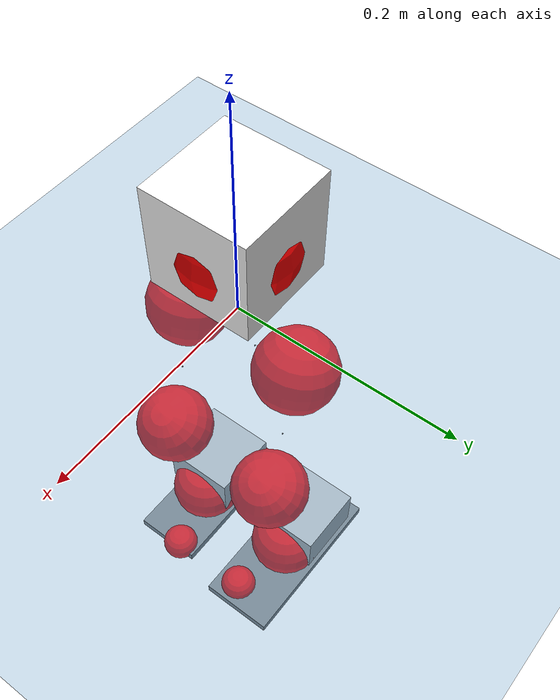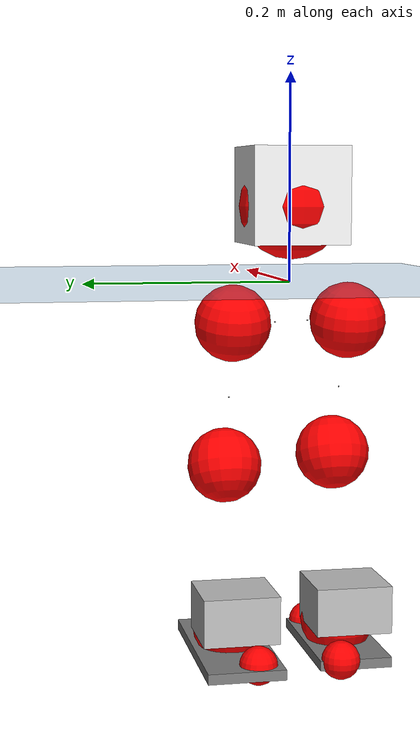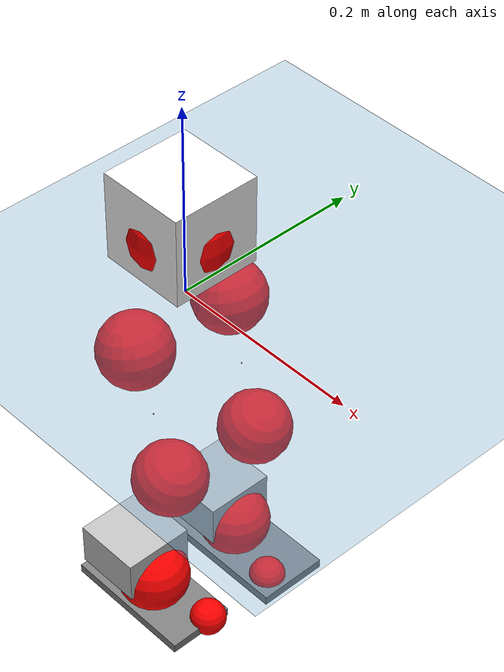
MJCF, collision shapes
<mujoco model="pi_12dof_release_v1">
  <compiler angle="radian" assetdir="assets" balanceinertia="true" inertiafromgeom="false"/>

  <option timestep="0.005" density="1.2" viscosity="2e-05"/>

  <size nkey="1"/>

  <visual>
    <quality shadowsize="8192"/>
    <map shadowclip="0.5"/>
  </visual>

  <default>
    <default class="/">
      <joint armature="0.01" damping="0.01" frictionloss="0.01"/>
      <geom contype="0" conaffinity="0" group="1" solref="-1000 -80"/>
      <site size="0.01 0.005 0.005" group="5"/>
      <general forcelimited="true" biastype="affine" gainprm="20" biasprm="0 -20 -0.5"/>
      <default class="foot">
        <geom size="0.0845 0.036 0.005" type="box" condim="6" group="4" priority="1" friction="0.9 0.2 0.2" solimp="0.015 1 0.005"/>
      </default>
      <default class="reward_collision_sphere">
        <geom group="5" rgba="1 0 0 1"/>
      </default>
    </default>
  </default>

  <asset>
    <texture type="skybox" colorspace="auto" name="//unnamed_texture_0" builtin="gradient" rgb1="0.95 0.95 0.95" rgb2="0.95 0.95 0.95" width="100" height="600"/>
    <texture type="2d" colorspace="auto" name="texplane" builtin="checker" rgb1="0.345 0.575 0.748" rgb2="0.345 0.575 0.748" markrgb="1 1 1" width="512" height="512"/>
    <material name="MatPlane" class="/" texture="texplane" texuniform="true" texrepeat="2 2" specular="0.9"/>
    <mesh name="baselink_1" class="/" file="baselink_1.STL"/>
    <mesh name="r_hip_pitch_link" class="/" file="r_hip_pitch_link.STL"/>
    <mesh name="r_hip_roll_link" class="/" file="r_hip_roll_link.STL"/>
    <mesh name="r_thigh_link" class="/" file="r_thigh_link.STL"/>
    <mesh name="r_calf_link" class="/" file="r_calf_link.STL"/>
    <mesh name="r_ankle_pitch_link" class="/" file="r_ankle_pitch_link.STL"/>
    <mesh name="r_ankle_roll_link" class="/" file="r_ankle_roll_link.STL"/>
    <mesh name="l_hip_pitch_link" class="/" file="l_hip_pitch_link.STL"/>
    <mesh name="l_hip_roll_link" class="/" file="l_hip_roll_link.STL"/>
    <mesh name="l_thigh_link" class="/" file="l_thigh_link.STL"/>
    <mesh name="l_calf_link" class="/" file="l_calf_link.STL"/>
    <mesh name="l_ankle_pitch_link" class="/" file="l_ankle_pitch_link.STL"/>
    <mesh name="l_ankle_roll_link" class="/" file="l_ankle_roll_link.STL"/>
  </asset>

  <worldbody>
    <geom name="floor" class="/" size="100 100 0.125" type="plane" group="0" material="MatPlane"/>
    <light name="toplight_shadow" class="/" pos="0 0 5" dir="0.0990148 0.0990148 -0.990148" type="directional" ambient="0.04 0.04 0.04" diffuse="0.55 0.55 0.55" specular="0.12 0.12 0.12"/>
    <light name="toplight_fill" class="/" pos="0 0 5" dir="0.0990148 0.0990148 -0.990148" type="directional" castshadow="false" ambient="0.04 0.04 0.04" diffuse="0.3 0.3 0.3" specular="0.08 0.08 0.08"/>
    <body name="trunk" pos="-0.00254588 -0.00103552 -0.00145423" quat="0.999999 -8.22404e-05 -0.00106396 0.000304707">
      <inertial pos="0.000669613 0.000741208 0.0420512" quat="0.696979 0.00104322 -0.00112878 0.71709" mass="1.70905" diaginertia="0.00950808 0.00186029 0.00561084"/>
      <joint name="//unnamed_joint_0" type="free"/>
      <geom name="//unnamed_geom_1" class="/" type="mesh" density="0" rgba="1 1 1 1" mesh="baselink_1"/>
      <geom name="//unnamed_geom_2" class="/" size="0.0462856 0.0462856 0.0462856" pos="0 0 0.0846198" type="box" rgba="1 1 1 1"/>
      <geom name="//unnamed_geom_3" class="reward_collision_sphere" size="0.0509141" pos="0 0 0.0740423"/>
      <site name="imu" class="/" pos="0.00892151 -0.0109442 -0.00121861" size="0.00925711"/>
      <camera name="track" class="/" pos="0 -1.45839 0" quat="0.707107 0.707107 0 0" mode="trackcom"/>
      <camera name="ego_camera" class="/" pos="0.0742642 0 0.190395" quat="-0.5 -0.5 0.5 0.5"/>
      <body name="r_hip_pitch_link" pos="-9.40109e-05 -0.016303 -0.0360455" quat="0.992229 0.000328996 -0.124422 -0.00107343">
        <inertial pos="-0.000683636 -0.0407626 0.000551396" quat="-0.0207583 0.707134 -0.0155296 0.706605" mass="0.303371" diaginertia="0.000106543 2.08379e-05 0.000115791"/>
        <joint name="r_hip_pitch_joint" class="/" pos="0 0 0" axis="-0.00221448 -0.999996 0.00200804" range="-1.73594 1.23586" armature="0.00848475" damping="0.00438253" frictionloss="0.00904176"/>
        <geom name="//unnamed_geom_4" class="/" type="mesh" density="0" rgba="0.75294 0.75294 0.75294 1" mesh="r_hip_pitch_link"/>
        <geom name="//unnamed_geom_5" class="/" size="0.000462856 0.000462856 0.000462856" type="box" rgba="0.75294 0.75294 0.75294 1"/>
        <body name="r_hip_roll_link" pos="-0.00076221 -0.0400717 -0.000109322" quat="1 0.000252058 0.00027308 -9.87263e-05">
          <inertial pos="-0.00128177 -0.00278632 -0.0667693" quat="0.707004 -0.078413 -0.081281 0.698134" mass="0.312563" diaginertia="0.000314099 5.61467e-05 0.00016799"/>
          <joint name="r_hip_roll_joint" class="/" pos="0 0 0" axis="-0.999921 0.0117409 0.00444931" range="-0.13901 0.552351" armature="0.00928785" damping="0.0102812" frictionloss="0.00928888"/>
          <geom name="//unnamed_geom_6" class="/" type="mesh" density="0" rgba="0.75294 0.75294 0.75294 1" mesh="r_hip_roll_link"/>
          <geom name="//unnamed_geom_7" class="/" size="0.000462856 0.000462856 0.000462856" type="box" rgba="0.75294 0.75294 0.75294 1"/>
          <geom name="//unnamed_geom_8" class="reward_collision_sphere" size="0.0370284"/>
          <body name="r_thigh_link" pos="0.00170084 0.00277306 -0.0705773" quat="1 4.30883e-05 0.000128417 -3.78226e-05">
            <inertial pos="0.000839449 -0.00124552 -0.0478563" quat="0.736704 0.676214 -0.000488756 0.00128784" mass="0.0930552" diaginertia="0.000123456 1.98618e-05 7.6928e-05"/>
            <joint name="r_thigh_joint" class="/" pos="0 0 0" axis="-0.00222883 -0.0135689 -0.999905" stiffness="0.00909484" range="-0.309755 0.604206" armature="0.00872633" damping="0" frictionloss="0.00825682"/>
            <geom name="//unnamed_geom_9" class="/" type="mesh" density="0" rgba="0.75294 0.75294 0.75294 1" mesh="r_thigh_link"/>
            <geom name="//unnamed_geom_10" class="/" size="0.000462856 0.000462856 0.000462856" type="box" rgba="0.75294 0.75294 0.75294 1"/>
            <body name="r_calf_link" pos="0.00208782 0.000836851 -0.0719372" quat="0.947639 -3.62785e-05 0.319344 -4.34346e-05">
              <inertial pos="-5.16041e-05 -0.00302181 -0.0737162" quat="0.999932 0.00829791 -0.00679302 0.00458467" mass="0.669082" diaginertia="0.00339185 0.000751537 0.000235417"/>
              <joint name="r_calf_joint" class="/" pos="0 0 0" axis="-0.00425682 -0.99998 -0.00465492" range="-1.59657 0.642966" armature="0.00789935" damping="0.00408906" frictionloss="0.00900879"/>
              <geom name="//unnamed_geom_11" class="/" type="mesh" density="0" rgba="0.75294 0.75294 0.75294 1" mesh="r_calf_link"/>
              <geom name="//unnamed_geom_12" class="/" size="0.000462856 0.000462856 0.000462856" type="box" rgba="0.75294 0.75294 0.75294 1"/>
              <geom name="//unnamed_geom_13" class="reward_collision_sphere" size="0.0370284"/>
              <body name="r_ankle_pitch_link" pos="0.00213245 0.000545205 -0.150423" quat="0.980067 -3.32772e-06 -0.198669 1.24666e-07">
                <inertial pos="0.00439612 0.00254021 -0.0027204" quat="-0.00560287 0.703952 0.00314486 0.710219" mass="0.143706" diaginertia="0.000296385 4.72016e-05 0.000163673"/>
                <joint name="r_ankle_pitch_joint" class="/" pos="0 0 0" axis="-0.000287711 -1 0.000668422" range="-1.30558 0.548095" armature="0.0092555" damping="0.00628434" frictionloss="0.0105411"/>
                <geom name="//unnamed_geom_14" class="/" type="mesh" density="0" rgba="0.75294 0.75294 0.75294 1" mesh="r_ankle_pitch_link"/>
                <geom name="//unnamed_geom_15" class="/" size="0.0361027 0.0370284 0.0231428" type="box" rgba="0.75294 0.75294 0.75294 1"/>
                <body name="r_ankle_roll_link" pos="0.0748609 0.00118397 -0.00161095" quat="1 9.53035e-05 4.38124e-05 3.98862e-06">
                  <inertial pos="-0.0243094 0.00037934 -0.0132629" quat="0.563313 0.425223 0.438878 0.556102" mass="0.387268" diaginertia="0.00105874 0.000212975 0.000352955"/>
                  <joint name="r_ankle_roll_joint" class="/" pos="0 0 0" axis="-0.999901 0.0121265 -0.00720323" range="-0.103794 0.0954504" armature="0.0080234" damping="0.0219746" frictionloss="0.00843806"/>
                  <geom name="//unnamed_geom_16" class="/" type="mesh" density="0" rgba="0.75294 0.75294 0.75294 1" mesh="r_ankle_roll_link"/>
                  <geom name="//unnamed_geom_17" class="/" type="mesh" rgba="0.75294 0.75294 0.75294 1" mesh="r_ankle_roll_link"/>
                  <geom name="right_foot" class="foot" size="0.0714461 0.0351128 0.00478694" pos="-0.0504996 0 -0.0465409"/>
                  <geom name="//unnamed_geom_19" class="reward_collision_sphere" size="0.0370284" pos="-0.0495094 0 -0.021155"/>
                  <geom name="//unnamed_geom_20" class="reward_collision_sphere" size="0.0185142" pos="0.0148528 0.0145839 -0.0423099"/>
                  <geom name="//unnamed_geom_21" class="reward_collision_sphere" size="0.0185142" pos="-0.118823 0.0145839 -0.0423099"/>
                  <site name="right_foot" class="foot" pos="-0.0504996 0 -0.0465409" size="0.00925711"/>
                </body>
              </body>
            </body>
          </body>
        </body>
      </body>
      <body name="l_hip_pitch_link" pos="0.000322931 0.0157821 -0.0371861" quat="0.992147 -0.000139068 -0.12508 -9.54056e-05">
        <inertial pos="0.000558556 0.0401175 -0.00289871" quat="-0.0348777 0.704118 0.0272234 0.708703" mass="0.323248" diaginertia="0.000127859 2.12633e-05 0.000134154"/>
        <joint name="l_hip_pitch_joint" class="/" pos="0 0 0" axis="0.00540591 0.999981 -0.00300013" range="-1.19403 1.74327" armature="0.0105601" damping="0.00637985" frictionloss="0.00974858"/>
        <geom name="//unnamed_geom_22" class="/" type="mesh" density="0" rgba="0.75294 0.75294 0.75294 1" mesh="l_hip_pitch_link"/>
        <geom name="//unnamed_geom_23" class="/" size="0.000462856 0.000462856 0.000462856" type="box" rgba="0.75294 0.75294 0.75294 1"/>
        <body name="l_hip_roll_link" pos="-0.000534387 0.0415766 -0.00034154" quat="1 7.86379e-07 -5.49511e-06 -8.46065e-06">
          <inertial pos="-0.00426264 -0.00137822 -0.0665851" quat="0.694014 -0.0838311 -0.0867827 0.709779" mass="0.315222" diaginertia="0.000309707 5.811e-05 0.000165937"/>
          <joint name="l_hip_roll_joint" class="/" pos="0 0 0" axis="-0.999995 0.000629126 0.00306359" range="-0.552033 0.171405" armature="0.00856554" damping="0" frictionloss="0.0092304"/>
          <geom name="//unnamed_geom_24" class="/" type="mesh" density="0" rgba="0.75294 0.75294 0.75294 1" mesh="l_hip_roll_link"/>
          <geom name="//unnamed_geom_25" class="/" size="0.000462856 0.000462856 0.000462856" type="box" rgba="0.75294 0.75294 0.75294 1"/>
          <geom name="//unnamed_geom_26" class="reward_collision_sphere" size="0.0370284"/>
          <body name="l_thigh_link" pos="-0.0024343 0.000526138 -0.0759403" quat="1 -2.5362e-05 -7.59063e-06 4.55396e-06">
            <inertial pos="0.00207868 -0.00358977 -0.0478638" quat="0.684259 0.72921 0.00579406 0.00304929" mass="0.0863169" diaginertia="0.000119262 1.9633e-05 7.64603e-05"/>
            <joint name="l_thigh_joint" class="/" pos="0 0 0" axis="-4.23094e-05 -0.00170318 -0.999999" range="-0.59624 0.265948" armature="0.00912347" damping="0.000520683" frictionloss="0.0096914"/>
            <geom name="//unnamed_geom_27" class="/" type="mesh" density="0" rgba="0.75294 0.75294 0.75294 1" mesh="l_thigh_link"/>
            <geom name="//unnamed_geom_28" class="/" size="0.000462856 0.000462856 0.000462856" type="box" rgba="0.75294 0.75294 0.75294 1"/>
            <body name="l_calf_link" pos="0.000407631 0.000796835 -0.073095" quat="0.94765 -1.98084e-05 0.319312 4.89404e-06">
              <inertial pos="0.000491891 0.004912 -0.0767568" quat="0.999984 0.003089 -0.00013384 0.00478762" mass="0.633508" diaginertia="0.00329537 0.000708965 0.000224826"/>
              <joint name="l_calf_joint" class="/" pos="0 0 0" axis="-0.00336277 0.999992 0.00220324" range="-0.603492 1.7069" armature="0.00926572" damping="0.00948806" frictionloss="0.0092729"/>
              <geom name="//unnamed_geom_29" class="/" type="mesh" density="0" rgba="0.75294 0.75294 0.75294 1" mesh="l_calf_link"/>
              <geom name="//unnamed_geom_30" class="/" size="0.000462856 0.000462856 0.000462856" type="box" rgba="0.75294 0.75294 0.75294 1"/>
              <geom name="//unnamed_geom_31" class="reward_collision_sphere" size="0.0370284"/>
              <body name="l_ankle_pitch_link" pos="-0.000250231 0.000602819 -0.145572" quat="0.980076 -9.86748e-05 -0.198621 -0.000104446">
                <inertial pos="0.00259304 0.00182853 0.000214315" quat="-0.00186878 0.707261 0.00251985 0.706946" mass="0.130051" diaginertia="0.000286515 4.45128e-05 0.000158419"/>
                <joint name="l_ankle_pitch_joint" class="/" pos="0 0 0" axis="0.00227001 0.999997 -0.000187533" range="-0.558946 1.32104" armature="0.00807912" damping="0.014192" frictionloss="0.0088418"/>
                <geom name="//unnamed_geom_32" class="/" type="mesh" density="0" rgba="0.75294 0.75294 0.75294 1" mesh="l_ankle_pitch_link"/>
                <geom name="//unnamed_geom_33" class="/" size="0.0361027 0.0370284 0.0231428" type="box" rgba="0.75294 0.75294 0.75294 1"/>
                <body name="l_ankle_roll_link" pos="0.0772616 7.69134e-05 0.0020108" quat="1 -1.28587e-05 -0.000563535 -0.000179212">
                  <inertial pos="-0.0241928 -0.0002118 -0.0152429" quat="0.558653 0.431345 0.430486 0.562611" mass="0.385955" diaginertia="0.00105763 0.000207667 0.00036319"/>
                  <joint name="l_ankle_roll_joint" class="/" pos="0 0 0" axis="-0.999997 -0.0015258 0.00213026" range="-0.155446 0.153979" armature="0.0105277" damping="0.00595766" frictionloss="0.00920965"/>
                  <geom name="//unnamed_geom_34" class="/" type="mesh" density="0" rgba="0.75294 0.75294 0.75294 1" mesh="l_ankle_roll_link"/>
                  <geom name="//unnamed_geom_35" class="/" type="mesh" rgba="0.75294 0.75294 0.75294 1" mesh="l_ankle_roll_link"/>
                  <geom name="left_foot" class="foot" size="0.0879905 0.0373804 0.00499777" pos="-0.0504996 0 -0.0465409"/>
                  <geom name="//unnamed_geom_37" class="reward_collision_sphere" size="0.0370284" pos="-0.0495094 0 -0.021155"/>
                  <geom name="//unnamed_geom_38" class="reward_collision_sphere" size="0.0185142" pos="0.0148528 -0.0145839 -0.0423099"/>
                  <geom name="//unnamed_geom_39" class="reward_collision_sphere" size="0.0185142" pos="-0.118823 -0.0145839 -0.0423099"/>
                  <site name="left_foot" class="foot" pos="-0.0504996 0 -0.0465409" size="0.00925711"/>
                </body>
              </body>
            </body>
          </body>
        </body>
      </body>
    </body>
  </worldbody>

  <contact>
    <pair class="/" geom1="floor" geom2="right_foot" name="//unnamed_contact_1"/>
    <pair class="/" geom1="floor" geom2="left_foot" name="//unnamed_contact_0"/>
  </contact>

  <actuator>
    <general name="r_hip_pitch_joint" class="/" joint="r_hip_pitch_joint" forcerange="-19.5825 19.5825" gainprm="18.3569" biasprm="0 -18.3569 -0.453435"/>
    <general name="r_hip_roll_joint" class="/" joint="r_hip_roll_joint" forcerange="-17.4481 17.4481" gainprm="18.3569" biasprm="0 -18.3569 -0.453435"/>
    <general name="r_thigh_joint" class="/" joint="r_thigh_joint" forcerange="-20.6721 20.6721" gainprm="18.3569" biasprm="0 -18.3569 -0.453435"/>
    <general name="r_calf_joint" class="/" joint="r_calf_joint" forcerange="-19.4522 19.4522" gainprm="18.3569" biasprm="0 -18.3569 -0.453435"/>
    <general name="r_ankle_pitch_joint" class="/" joint="r_ankle_pitch_joint" forcerange="-19.6142 19.6142" gainprm="18.3569" biasprm="0 -18.3569 -0.453435"/>
    <general name="r_ankle_roll_joint" class="/" joint="r_ankle_roll_joint" forcerange="-20.6447 20.6447" gainprm="18.3569" biasprm="0 -18.3569 -0.453435"/>
    <general name="l_hip_pitch_joint" class="/" joint="l_hip_pitch_joint" forcerange="-18.6352 18.6352" gainprm="18.3569" biasprm="0 -18.3569 -0.453435"/>
    <general name="l_hip_roll_joint" class="/" joint="l_hip_roll_joint" forcerange="-21.4926 21.4926" gainprm="18.3569" biasprm="0 -18.3569 -0.453435"/>
    <general name="l_thigh_joint" class="/" joint="l_thigh_joint" forcerange="-17.4637 17.4637" gainprm="18.3569" biasprm="0 -18.3569 -0.453435"/>
    <general name="l_calf_joint" class="/" joint="l_calf_joint" forcerange="-18.9461 18.9461" gainprm="18.3569" biasprm="0 -18.3569 -0.453435"/>
    <general name="l_ankle_pitch_joint" class="/" joint="l_ankle_pitch_joint" forcerange="-20.9203 20.9203" gainprm="18.3569" biasprm="0 -18.3569 -0.453435"/>
    <general name="l_ankle_roll_joint" class="/" joint="l_ankle_roll_joint" forcerange="-20.9349 20.9349" gainprm="18.3569" biasprm="0 -18.3569 -0.453435"/>
  </actuator>

  <sensor>
    <gyro site="imu" name="imu_angular_velocity"/>
    <velocimeter site="imu" name="imu_linear_velocity"/>
    <framelinvel objtype="site" objname="left_foot" name="left_foot_global_linear_velocity"/>
    <framelinvel objtype="site" objname="right_foot" name="right_foot_global_linear_velocity"/>
  </sensor>

  <keyframe>
    <key name="home" qpos="0 0 0.291 1 0 0 0 0.4 0 0 -0.8 0.4 0 -0.4 0 0 0.8 -0.4 0"/>
  </keyframe>
</mujoco>
